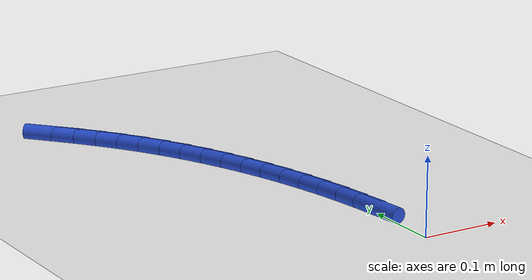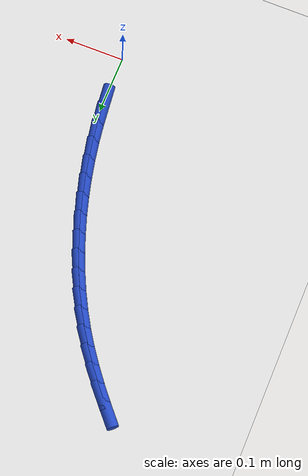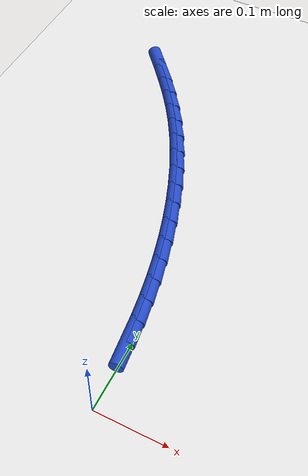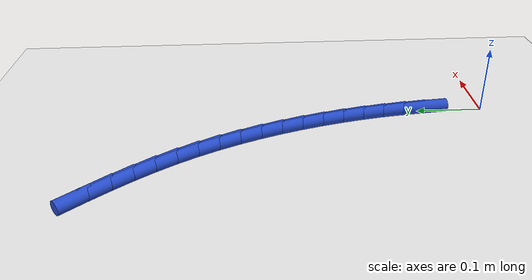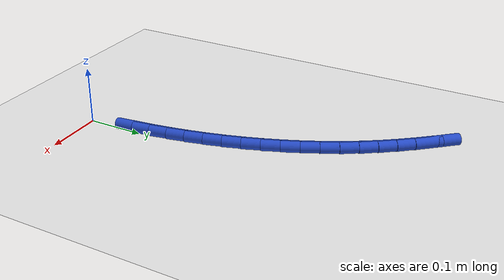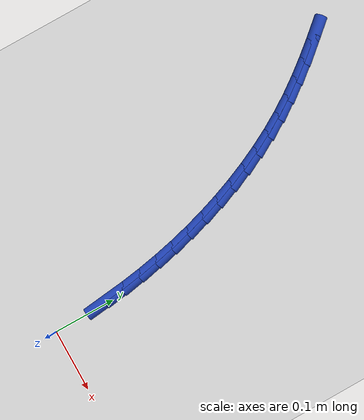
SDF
<sdf version="1.6">
 <world name="default">
  <model name="ground_plane">
   <static>1</static>
   <link name="link">
    <collision name="collision">
     <geometry><plane><normal>0 0 1</normal><size>100 100</size></plane></geometry>
     <surface><friction><ode><mu>100</mu><mu2>50</mu2></ode></friction></surface>
    </collision>
    <visual name="visual">
     <cast_shadows>0</cast_shadows>
     <geometry><plane><normal>0 0 1</normal><size>100 100</size></plane></geometry>
     <material>
      <script><uri>file://media/materials/scripts/gazebo.material</uri><name>Gazebo/WhiteGlow</name></script>
     </material>
    </visual>
   </link>
  </model>
  <model name="line">
   <link name="link_3">
    <pose>-0.0041220826799419075 0.09594300611781993 0.01 0 1.57 -1.4581609408207235</pose>
    <collision name="collision">
     <geometry><cylinder><radius>0.01</radius><length>0.08</length></cylinder></geometry>
    </collision>
    <visual name="visual">
     <material>
      <script><name>Gazebo/Blue</name><uri>file://media/materials/scripts/gazebo.material</uri></script>
     </material>
     <geometry><cylinder><radius>0.01</radius><length>0.08</length></cylinder></geometry>
    </visual>
   </link>
   <link name="link_4">
    <pose>-0.007737894079080308 0.1279090483909102 0.01 0 1.57 -1.423607430531382</pose>
    <collision name="collision">
     <geometry><cylinder><radius>0.01</radius><length>0.08</length></cylinder></geometry>
    </collision>
    <visual name="visual">
     <material>
      <script><name>Gazebo/Blue</name><uri>file://media/materials/scripts/gazebo.material</uri></script>
     </material>
     <geometry><cylinder><radius>0.01</radius><length>0.08</length></cylinder></geometry>
    </visual>
   </link>
   <link name="link_5">
    <pose>-0.012467586258059622 0.15981014474263164 0.01 0 1.57 -1.3892009409590484</pose>
    <collision name="collision">
     <geometry><cylinder><radius>0.01</radius><length>0.08</length></cylinder></geometry>
    </collision>
    <visual name="visual">
     <material>
      <script><name>Gazebo/Blue</name><uri>file://media/materials/scripts/gazebo.material</uri></script>
     </material>
     <geometry><cylinder><radius>0.01</radius><length>0.08</length></cylinder></geometry>
    </visual>
   </link>
   <link name="link_6">
    <pose>-0.01830695253303706 0.19161181555001774 0.01 0 1.57 -1.3549110092591592</pose>
    <collision name="collision">
     <geometry><cylinder><radius>0.01</radius><length>0.08</length></cylinder></geometry>
    </collision>
    <visual name="visual">
     <material>
      <script><name>Gazebo/Blue</name><uri>file://media/materials/scripts/gazebo.material</uri></script>
     </material>
     <geometry><cylinder><radius>0.01</radius><length>0.08</length></cylinder></geometry>
    </visual>
   </link>
   <link name="link_7">
    <pose>-0.02525178625785814 0.22327958102439927 0.01 0 1.57 -1.32052249762528</pose>
    <collision name="collision">
     <geometry><cylinder><radius>0.01</radius><length>0.08</length></cylinder></geometry>
    </collision>
    <visual name="visual">
     <material>
      <script><name>Gazebo/Blue</name><uri>file://media/materials/scripts/gazebo.material</uri></script>
     </material>
     <geometry><cylinder><radius>0.01</radius><length>0.08</length></cylinder></geometry>
    </visual>
   </link>
   <link name="link_8">
    <pose>-0.033300802831847345 0.25476611412608485 0.01 0 1.57 -1.2852364362277098</pose>
    <collision name="collision">
     <geometry><cylinder><radius>0.01</radius><length>0.08</length></cylinder></geometry>
    </collision>
    <visual name="visual">
     <material>
      <script><name>Gazebo/Blue</name><uri>file://media/materials/scripts/gazebo.material</uri></script>
     </material>
     <geometry><cylinder><radius>0.01</radius><length>0.08</length></cylinder></geometry>
    </visual>
   </link>
   <link name="link_9">
    <pose>-0.0424635939208002 0.2859762685303835 0.01 0 1.57 -1.2486706087328696</pose>
    <collision name="collision">
     <geometry><cylinder><radius>0.01</radius><length>0.08</length></cylinder></geometry>
    </collision>
    <visual name="visual">
     <material>
      <script><name>Gazebo/Blue</name><uri>file://media/materials/scripts/gazebo.material</uri></script>
     </material>
     <geometry><cylinder><radius>0.01</radius><length>0.08</length></cylinder></geometry>
    </visual>
   </link>
   <link name="link_10">
    <pose>-0.052752281195623335 0.31680377433120127 0.01 0 1.57 -1.2105892125753264</pose>
    <collision name="collision">
     <geometry><cylinder><radius>0.01</radius><length>0.08</length></cylinder></geometry>
    </collision>
    <visual name="visual">
     <material>
      <script><name>Gazebo/Blue</name><uri>file://media/materials/scripts/gazebo.material</uri></script>
     </material>
     <geometry><cylinder><radius>0.01</radius><length>0.08</length></cylinder></geometry>
    </visual>
   </link>
   <link name="link_11">
    <pose>-0.06417898632722333 0.3471423616224437 0.01 0 1.57 -1.1707524797545545</pose>
    <collision name="collision">
     <geometry><cylinder><radius>0.01</radius><length>0.08</length></cylinder></geometry>
    </collision>
    <visual name="visual">
     <material>
      <script><name>Gazebo/Blue</name><uri>file://media/materials/scripts/gazebo.material</uri></script>
     </material>
     <geometry><cylinder><radius>0.01</radius><length>0.08</length></cylinder></geometry>
    </visual>
   </link>
   <link name="link_12">
    <pose>-0.07675583098650679 0.3768857604980167 0.01 0 1.57 -1.1289172614760576</pose>
    <collision name="collision">
     <geometry><cylinder><radius>0.01</radius><length>0.08</length></cylinder></geometry>
    </collision>
    <visual name="visual">
     <material>
      <script><name>Gazebo/Blue</name><uri>file://media/materials/scripts/gazebo.material</uri></script>
     </material>
     <geometry><cylinder><radius>0.01</radius><length>0.08</length></cylinder></geometry>
    </visual>
   </link>
   <link name="link_13">
    <pose>-0.09049493684438034 0.405927701051826 0.01 0 1.57 -1.0848391326967213</pose>
    <collision name="collision">
     <geometry><cylinder><radius>0.01</radius><length>0.08</length></cylinder></geometry>
    </collision>
    <visual name="visual">
     <material>
      <script><name>Gazebo/Blue</name><uri>file://media/materials/scripts/gazebo.material</uri></script>
     </material>
     <geometry><cylinder><radius>0.01</radius><length>0.08</length></cylinder></geometry>
    </visual>
   </link>
   <link name="link_14">
    <pose>-0.10540842557175056 0.4341619133777777 0.01 0 1.57 -1.0382764347042215</pose>
    <collision name="collision">
     <geometry><cylinder><radius>0.01</radius><length>0.08</length></cylinder></geometry>
    </collision>
    <visual name="visual">
     <material>
      <script><name>Gazebo/Blue</name><uri>file://media/materials/scripts/gazebo.material</uri></script>
     </material>
     <geometry><cylinder><radius>0.01</radius><length>0.08</length></cylinder></geometry>
    </visual>
   </link>
   <link name="link_15">
    <pose>-0.12150841883952404 0.461482127569777 0.01 0 1.57 -0.9900257909279118</pose>
    <collision name="collision">
     <geometry><cylinder><radius>0.01</radius><length>0.08</length></cylinder></geometry>
    </collision>
    <visual name="visual">
     <material>
      <script><name>Gazebo/Blue</name><uri>file://media/materials/scripts/gazebo.material</uri></script>
     </material>
     <geometry><cylinder><radius>0.01</radius><length>0.08</length></cylinder></geometry>
    </visual>
   </link>
   <link name="link_16">
    <pose>-0.13878782946803 0.48781184397480276 0.01 0 1.57 -0.9459627137961062</pose>
    <collision name="collision">
     <geometry><cylinder><radius>0.01</radius><length>0.08</length></cylinder></geometry>
    </collision>
    <visual name="visual">
     <material>
      <script><name>Gazebo/Blue</name><uri>file://media/materials/scripts/gazebo.material</uri></script>
     </material>
     <geometry><cylinder><radius>0.01</radius><length>0.08</length></cylinder></geometry>
    </visual>
   </link>
   <link name="link_17">
    <pose>-0.15713027047494438 0.5132439579159979 0.01 0 1.57 -0.9085102322134792</pose>
    <collision name="collision">
     <geometry><cylinder><radius>0.01</radius><length>0.08</length></cylinder></geometry>
    </collision>
    <visual name="visual">
     <material>
      <script><name>Gazebo/Blue</name><uri>file://media/materials/scripts/gazebo.material</uri></script>
     </material>
     <geometry><cylinder><radius>0.01</radius><length>0.08</length></cylinder></geometry>
    </visual>
   </link>
   <link name="link_18">
    <pose>-0.17638074971390247 0.5379311957563047 0.01 0 1.57 -0.8779178885768317</pose>
    <collision name="collision">
     <geometry><cylinder><radius>0.01</radius><length>0.08</length></cylinder></geometry>
    </collision>
    <visual name="visual">
     <material>
      <script><name>Gazebo/Blue</name><uri>file://media/materials/scripts/gazebo.material</uri></script>
     </material>
     <geometry><cylinder><radius>0.01</radius><length>0.08</length></cylinder></geometry>
    </visual>
   </link>
   <link name="link_19">
    <pose>-0.1963842309153886 0.5620263522415894 0.01 0 1.57 -0.8543039969566919</pose>
    <collision name="collision">
     <geometry><cylinder><radius>0.01</radius><length>0.08</length></cylinder></geometry>
    </collision>
    <visual name="visual">
     <material>
      <script><name>Gazebo/Blue</name><uri>file://media/materials/scripts/gazebo.material</uri></script>
     </material>
     <geometry><cylinder><radius>0.01</radius><length>0.08</length></cylinder></geometry>
    </visual>
   </link>
  </model>
 </world>
</sdf>
